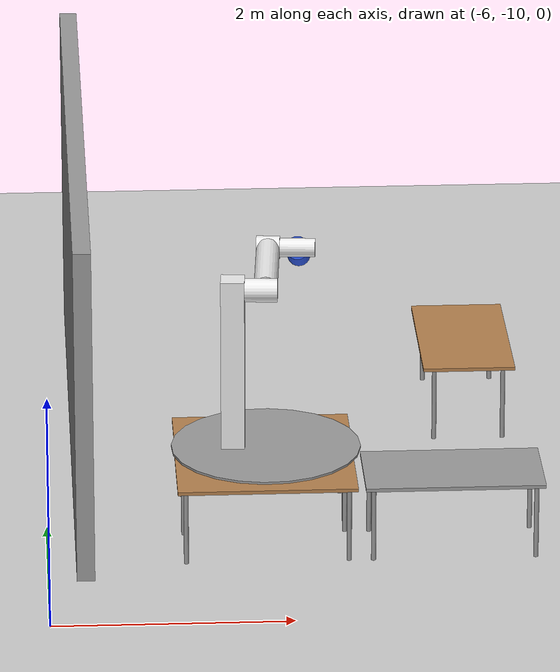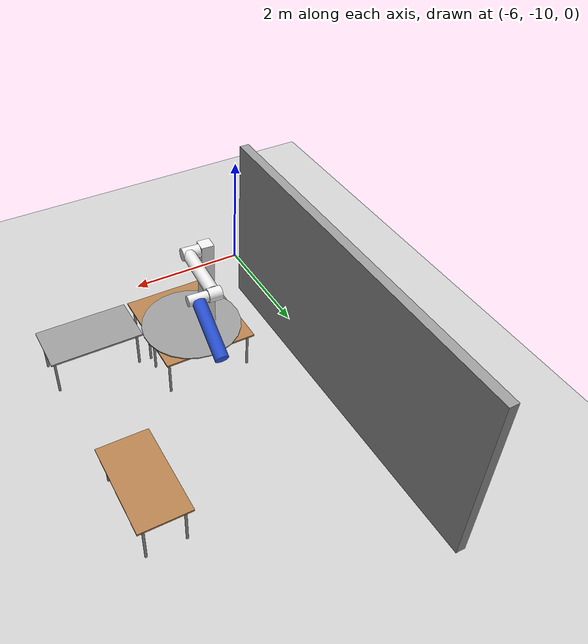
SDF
<sdf version="1.6">
 <world name="default">
  <model name="ground_plane">
   <static>1</static>
   <link name="link">
    <collision name="collision">
     <geometry><plane><normal>0 0 1</normal><size>100 100</size></plane></geometry>
     <surface>
      <contact><collide_bitmask>65535</collide_bitmask></contact>
      <friction><ode><mu>100</mu><mu2>50</mu2></ode></friction>
     </surface>
    </collision>
    <visual name="visual">
     <cast_shadows>0</cast_shadows>
     <geometry><plane><normal>0 0 1</normal><size>100 100</size></plane></geometry>
     <material>
      <script><uri>file://media/materials/scripts/gazebo.material</uri><name>Gazebo/Grey</name></script>
     </material>
    </visual>
   </link>
  </model>
  <model name="nrsl">
   <link name="Wall_5">
    <pose>-5.41 -2.97 0 0 0 -1.5708</pose>
    <visual name="Wall_5_Visual">
     <pose>0 0 1.45 0 -0 0</pose>
     <geometry><box><size>6.09 0.15 2.9</size></box></geometry>
     <material>
      <script><uri>file://media/materials/scripts/gazebo.material</uri><name>Gazebo/Grey</name></script>
      <ambient>1 1 1 1</ambient>
     </material>
     <meta><layer>0</layer></meta>
    </visual>
    <collision name="Wall_5_Collision">
     <pose>0 0 1.45 0 -0 0</pose>
     <geometry><box><size>6.09 0.15 2.9</size></box></geometry>
     <surface>
      <friction>
       <ode><mu>1</mu><mu2>1</mu2><fdir1>0 0 0</fdir1><slip1>0</slip1><slip2>0</slip2></ode>
       <torsional>
        <coefficient>1</coefficient>
        <patch_radius>0</patch_radius>
        <surface_radius>0</surface_radius>
        <use_patch_radius>1</use_patch_radius>
        <ode><slip>0</slip></ode>
       </torsional>
      </friction>
      <bounce><restitution_coefficient>0</restitution_coefficient><threshold>1e+06</threshold></bounce>
      <contact>
       <collide_without_contact>0</collide_without_contact>
       <collide_without_contact_bitmask>1</collide_without_contact_bitmask>
       <collide_bitmask>1</collide_bitmask>
       <ode>
        <soft_cfm>0</soft_cfm>
        <soft_erp>0.2</soft_erp>
        <kp>1e+13</kp>
        <kd>1</kd>
        <max_vel>0.01</max_vel>
        <min_depth>0</min_depth>
       </ode>
       <bullet>
        <split_impulse>1</split_impulse>
        <split_impulse_penetration_threshold>-0.01</split_impulse_penetration_threshold>
        <soft_cfm>0</soft_cfm>
        <soft_erp>0.2</soft_erp>
        <kp>1e+13</kp>
        <kd>1</kd>
       </bullet>
      </contact>
     </surface>
    </collision>
   </link>
   <static>1</static>
   <pose>-0.282297 -3.10716 0 0 -0 0</pose>
  </model>
  <model name="table_0">
   <link name="link">
    <pose>0 0 0 0 -0 1.57</pose>
    <visual name="visual1">
     <pose>0 0 0.67 0 -0 0</pose>
     <geometry><box><size>1.5 0.8 0.03</size></box></geometry>
     <material>
      <script><uri>file://media/materials/scripts/gazebo.material</uri><name>Gazebo/Wood</name></script>
     </material>
    </visual>
    <visual name="front_left_leg">
     <pose>0.68 0.3 0.335 0 -0 0</pose>
     <geometry><cylinder><radius>0.02</radius><length>0.67</length></cylinder></geometry>
     <material>
      <script><uri>file://media/materials/scripts/gazebo.material</uri><name>Gazebo/Grey</name></script>
     </material>
    </visual>
    <visual name="front_right_leg">
     <pose>0.68 -0.3 0.335 0 -0 0</pose>
     <geometry><cylinder><radius>0.02</radius><length>0.67</length></cylinder></geometry>
     <material>
      <script><uri>file://media/materials/scripts/gazebo.material</uri><name>Gazebo/Grey</name></script>
     </material>
    </visual>
    <visual name="back_right_leg">
     <pose>-0.68 -0.3 0.335 0 -0 0</pose>
     <geometry><cylinder><radius>0.02</radius><length>0.67</length></cylinder></geometry>
     <material>
      <script><uri>file://media/materials/scripts/gazebo.material</uri><name>Gazebo/Grey</name></script>
     </material>
    </visual>
    <visual name="back_left_leg">
     <pose>-0.68 0.3 0.335 0 -0 0</pose>
     <geometry><cylinder><radius>0.02</radius><length>0.67</length></cylinder></geometry>
     <material>
      <script><uri>file://media/materials/scripts/gazebo.material</uri><name>Gazebo/Grey</name></script>
     </material>
    </visual>
    <collision name="surface">
     <pose>0 0 0.67 0 -0 0</pose>
     <geometry><box><size>1.5 0.8 0.03</size></box></geometry>
     <surface>
      <friction>
       <ode><mu>0.6</mu><mu2>0.6</mu2><fdir1>0 0 0</fdir1><slip1>0</slip1><slip2>0</slip2></ode>
       <torsional>
        <coefficient>1</coefficient>
        <patch_radius>0</patch_radius>
        <surface_radius>0</surface_radius>
        <use_patch_radius>1</use_patch_radius>
        <ode><slip>0</slip></ode>
       </torsional>
      </friction>
      <bounce><restitution_coefficient>0</restitution_coefficient><threshold>1e+06</threshold></bounce>
      <contact>
       <collide_without_contact>0</collide_without_contact>
       <collide_without_contact_bitmask>1</collide_without_contact_bitmask>
       <collide_bitmask>1</collide_bitmask>
       <ode>
        <soft_cfm>0</soft_cfm>
        <soft_erp>0.2</soft_erp>
        <kp>1e+13</kp>
        <kd>1</kd>
        <max_vel>0.01</max_vel>
        <min_depth>0</min_depth>
       </ode>
       <bullet>
        <split_impulse>1</split_impulse>
        <split_impulse_penetration_threshold>-0.01</split_impulse_penetration_threshold>
        <soft_cfm>0</soft_cfm>
        <soft_erp>0.2</soft_erp>
        <kp>1e+13</kp>
        <kd>1</kd>
       </bullet>
      </contact>
     </surface>
    </collision>
    <collision name="front_left_leg">
     <pose>0.68 0.3 0.335 0 -0 0</pose>
     <geometry><cylinder><radius>0.02</radius><length>0.67</length></cylinder></geometry>
     <surface>
      <friction>
       <ode><mu>1</mu><mu2>1</mu2><fdir1>0 0 0</fdir1><slip1>0</slip1><slip2>0</slip2></ode>
       <torsional>
        <coefficient>1</coefficient>
        <patch_radius>0</patch_radius>
        <surface_radius>0</surface_radius>
        <use_patch_radius>1</use_patch_radius>
        <ode><slip>0</slip></ode>
       </torsional>
      </friction>
      <bounce><restitution_coefficient>0</restitution_coefficient><threshold>1e+06</threshold></bounce>
      <contact>
       <collide_without_contact>0</collide_without_contact>
       <collide_without_contact_bitmask>1</collide_without_contact_bitmask>
       <collide_bitmask>1</collide_bitmask>
       <ode>
        <soft_cfm>0</soft_cfm>
        <soft_erp>0.2</soft_erp>
        <kp>1e+13</kp>
        <kd>1</kd>
        <max_vel>0.01</max_vel>
        <min_depth>0</min_depth>
       </ode>
       <bullet>
        <split_impulse>1</split_impulse>
        <split_impulse_penetration_threshold>-0.01</split_impulse_penetration_threshold>
        <soft_cfm>0</soft_cfm>
        <soft_erp>0.2</soft_erp>
        <kp>1e+13</kp>
        <kd>1</kd>
       </bullet>
      </contact>
     </surface>
    </collision>
    <collision name="front_right_leg">
     <pose>0.68 -0.3 0.335 0 -0 0</pose>
     <geometry><cylinder><radius>0.02</radius><length>0.67</length></cylinder></geometry>
     <surface>
      <friction>
       <ode><mu>1</mu><mu2>1</mu2><fdir1>0 0 0</fdir1><slip1>0</slip1><slip2>0</slip2></ode>
       <torsional>
        <coefficient>1</coefficient>
        <patch_radius>0</patch_radius>
        <surface_radius>0</surface_radius>
        <use_patch_radius>1</use_patch_radius>
        <ode><slip>0</slip></ode>
       </torsional>
      </friction>
      <bounce><restitution_coefficient>0</restitution_coefficient><threshold>1e+06</threshold></bounce>
      <contact>
       <collide_without_contact>0</collide_without_contact>
       <collide_without_contact_bitmask>1</collide_without_contact_bitmask>
       <collide_bitmask>1</collide_bitmask>
       <ode>
        <soft_cfm>0</soft_cfm>
        <soft_erp>0.2</soft_erp>
        <kp>1e+13</kp>
        <kd>1</kd>
        <max_vel>0.01</max_vel>
        <min_depth>0</min_depth>
       </ode>
       <bullet>
        <split_impulse>1</split_impulse>
        <split_impulse_penetration_threshold>-0.01</split_impulse_penetration_threshold>
        <soft_cfm>0</soft_cfm>
        <soft_erp>0.2</soft_erp>
        <kp>1e+13</kp>
        <kd>1</kd>
       </bullet>
      </contact>
     </surface>
    </collision>
    <collision name="back_right_leg">
     <pose>-0.68 -0.3 0.335 0 -0 0</pose>
     <geometry><cylinder><radius>0.02</radius><length>0.67</length></cylinder></geometry>
     <surface>
      <friction>
       <ode><mu>1</mu><mu2>1</mu2><fdir1>0 0 0</fdir1><slip1>0</slip1><slip2>0</slip2></ode>
       <torsional>
        <coefficient>1</coefficient>
        <patch_radius>0</patch_radius>
        <surface_radius>0</surface_radius>
        <use_patch_radius>1</use_patch_radius>
        <ode><slip>0</slip></ode>
       </torsional>
      </friction>
      <bounce><restitution_coefficient>0</restitution_coefficient><threshold>1e+06</threshold></bounce>
      <contact>
       <collide_without_contact>0</collide_without_contact>
       <collide_without_contact_bitmask>1</collide_without_contact_bitmask>
       <collide_bitmask>1</collide_bitmask>
       <ode>
        <soft_cfm>0</soft_cfm>
        <soft_erp>0.2</soft_erp>
        <kp>1e+13</kp>
        <kd>1</kd>
        <max_vel>0.01</max_vel>
        <min_depth>0</min_depth>
       </ode>
       <bullet>
        <split_impulse>1</split_impulse>
        <split_impulse_penetration_threshold>-0.01</split_impulse_penetration_threshold>
        <soft_cfm>0</soft_cfm>
        <soft_erp>0.2</soft_erp>
        <kp>1e+13</kp>
        <kd>1</kd>
       </bullet>
      </contact>
     </surface>
    </collision>
    <collision name="back_left_leg">
     <pose>-0.68 0.3 0.335 0 -0 0</pose>
     <geometry><cylinder><radius>0.02</radius><length>0.67</length></cylinder></geometry>
     <surface>
      <friction>
       <ode><mu>1</mu><mu2>1</mu2><fdir1>0 0 0</fdir1><slip1>0</slip1><slip2>0</slip2></ode>
       <torsional>
        <coefficient>1</coefficient>
        <patch_radius>0</patch_radius>
        <surface_radius>0</surface_radius>
        <use_patch_radius>1</use_patch_radius>
        <ode><slip>0</slip></ode>
       </torsional>
      </friction>
      <bounce><restitution_coefficient>0</restitution_coefficient><threshold>1e+06</threshold></bounce>
      <contact>
       <collide_without_contact>0</collide_without_contact>
       <collide_without_contact_bitmask>1</collide_without_contact_bitmask>
       <collide_bitmask>1</collide_bitmask>
       <ode>
        <soft_cfm>0</soft_cfm>
        <soft_erp>0.2</soft_erp>
        <kp>1e+13</kp>
        <kd>1</kd>
        <max_vel>0.01</max_vel>
        <min_depth>0</min_depth>
       </ode>
       <bullet>
        <split_impulse>1</split_impulse>
        <split_impulse_penetration_threshold>-0.01</split_impulse_penetration_threshold>
        <soft_cfm>0</soft_cfm>
        <soft_erp>0.2</soft_erp>
        <kp>1e+13</kp>
        <kd>1</kd>
       </bullet>
      </contact>
     </surface>
    </collision>
   </link>
   <static>1</static>
   <pose>-2.28394 -5.55738 0 0 -0 0</pose>
  </model>
  <model name="table_6_2">
   <link name="link">
    <visual name="visual1">
     <pose>0 0 0.67 0 -0 0</pose>
     <geometry><box><size>1.5 0.8 0.03</size></box></geometry>
     <material>
      <script><uri>file://media/materials/scripts/gazebo.material</uri><name>Gazebo/Grey</name></script>
     </material>
    </visual>
    <visual name="front_left_leg">
     <pose>0.68 0.3 0.335 0 -0 0</pose>
     <geometry><cylinder><radius>0.02</radius><length>0.67</length></cylinder></geometry>
     <material>
      <script><uri>file://media/materials/scripts/gazebo.material</uri><name>Gazebo/Grey</name></script>
     </material>
    </visual>
    <visual name="front_right_leg">
     <pose>0.68 -0.3 0.335 0 -0 0</pose>
     <geometry><cylinder><radius>0.02</radius><length>0.67</length></cylinder></geometry>
     <material>
      <script><uri>file://media/materials/scripts/gazebo.material</uri><name>Gazebo/Grey</name></script>
     </material>
    </visual>
    <visual name="back_right_leg">
     <pose>-0.68 -0.3 0.335 0 -0 0</pose>
     <geometry><cylinder><radius>0.02</radius><length>0.67</length></cylinder></geometry>
     <material>
      <script><uri>file://media/materials/scripts/gazebo.material</uri><name>Gazebo/Grey</name></script>
     </material>
    </visual>
    <visual name="back_left_leg">
     <pose>-0.68 0.3 0.335 0 -0 0</pose>
     <geometry><cylinder><radius>0.02</radius><length>0.67</length></cylinder></geometry>
     <material>
      <script><uri>file://media/materials/scripts/gazebo.material</uri><name>Gazebo/Grey</name></script>
     </material>
    </visual>
    <collision name="surface">
     <pose>0 0 0.67 0 -0 0</pose>
     <geometry><box><size>1.5 0.8 0.03</size></box></geometry>
     <surface>
      <friction>
       <ode><mu>0.6</mu><mu2>0.6</mu2><fdir1>0 0 0</fdir1><slip1>0</slip1><slip2>0</slip2></ode>
       <torsional>
        <coefficient>1</coefficient>
        <patch_radius>0</patch_radius>
        <surface_radius>0</surface_radius>
        <use_patch_radius>1</use_patch_radius>
        <ode><slip>0</slip></ode>
       </torsional>
      </friction>
      <bounce><restitution_coefficient>0</restitution_coefficient><threshold>1e+06</threshold></bounce>
      <contact>
       <collide_without_contact>0</collide_without_contact>
       <collide_without_contact_bitmask>1</collide_without_contact_bitmask>
       <collide_bitmask>1</collide_bitmask>
       <ode>
        <soft_cfm>0</soft_cfm>
        <soft_erp>0.2</soft_erp>
        <kp>1e+13</kp>
        <kd>1</kd>
        <max_vel>0.01</max_vel>
        <min_depth>0</min_depth>
       </ode>
       <bullet>
        <split_impulse>1</split_impulse>
        <split_impulse_penetration_threshold>-0.01</split_impulse_penetration_threshold>
        <soft_cfm>0</soft_cfm>
        <soft_erp>0.2</soft_erp>
        <kp>1e+13</kp>
        <kd>1</kd>
       </bullet>
      </contact>
     </surface>
    </collision>
    <collision name="front_left_leg">
     <pose>0.68 0.3 0.335 0 -0 0</pose>
     <geometry><cylinder><radius>0.02</radius><length>0.67</length></cylinder></geometry>
     <surface>
      <friction>
       <ode><mu>1</mu><mu2>1</mu2><fdir1>0 0 0</fdir1><slip1>0</slip1><slip2>0</slip2></ode>
       <torsional>
        <coefficient>1</coefficient>
        <patch_radius>0</patch_radius>
        <surface_radius>0</surface_radius>
        <use_patch_radius>1</use_patch_radius>
        <ode><slip>0</slip></ode>
       </torsional>
      </friction>
      <bounce><restitution_coefficient>0</restitution_coefficient><threshold>1e+06</threshold></bounce>
      <contact>
       <collide_without_contact>0</collide_without_contact>
       <collide_without_contact_bitmask>1</collide_without_contact_bitmask>
       <collide_bitmask>1</collide_bitmask>
       <ode>
        <soft_cfm>0</soft_cfm>
        <soft_erp>0.2</soft_erp>
        <kp>1e+13</kp>
        <kd>1</kd>
        <max_vel>0.01</max_vel>
        <min_depth>0</min_depth>
       </ode>
       <bullet>
        <split_impulse>1</split_impulse>
        <split_impulse_penetration_threshold>-0.01</split_impulse_penetration_threshold>
        <soft_cfm>0</soft_cfm>
        <soft_erp>0.2</soft_erp>
        <kp>1e+13</kp>
        <kd>1</kd>
       </bullet>
      </contact>
     </surface>
    </collision>
    <collision name="front_right_leg">
     <pose>0.68 -0.3 0.335 0 -0 0</pose>
     <geometry><cylinder><radius>0.02</radius><length>0.67</length></cylinder></geometry>
     <surface>
      <friction>
       <ode><mu>1</mu><mu2>1</mu2><fdir1>0 0 0</fdir1><slip1>0</slip1><slip2>0</slip2></ode>
       <torsional>
        <coefficient>1</coefficient>
        <patch_radius>0</patch_radius>
        <surface_radius>0</surface_radius>
        <use_patch_radius>1</use_patch_radius>
        <ode><slip>0</slip></ode>
       </torsional>
      </friction>
      <bounce><restitution_coefficient>0</restitution_coefficient><threshold>1e+06</threshold></bounce>
      <contact>
       <collide_without_contact>0</collide_without_contact>
       <collide_without_contact_bitmask>1</collide_without_contact_bitmask>
       <collide_bitmask>1</collide_bitmask>
       <ode>
        <soft_cfm>0</soft_cfm>
        <soft_erp>0.2</soft_erp>
        <kp>1e+13</kp>
        <kd>1</kd>
        <max_vel>0.01</max_vel>
        <min_depth>0</min_depth>
       </ode>
       <bullet>
        <split_impulse>1</split_impulse>
        <split_impulse_penetration_threshold>-0.01</split_impulse_penetration_threshold>
        <soft_cfm>0</soft_cfm>
        <soft_erp>0.2</soft_erp>
        <kp>1e+13</kp>
        <kd>1</kd>
       </bullet>
      </contact>
     </surface>
    </collision>
    <collision name="back_right_leg">
     <pose>-0.68 -0.3 0.335 0 -0 0</pose>
     <geometry><cylinder><radius>0.02</radius><length>0.67</length></cylinder></geometry>
     <surface>
      <friction>
       <ode><mu>1</mu><mu2>1</mu2><fdir1>0 0 0</fdir1><slip1>0</slip1><slip2>0</slip2></ode>
       <torsional>
        <coefficient>1</coefficient>
        <patch_radius>0</patch_radius>
        <surface_radius>0</surface_radius>
        <use_patch_radius>1</use_patch_radius>
        <ode><slip>0</slip></ode>
       </torsional>
      </friction>
      <bounce><restitution_coefficient>0</restitution_coefficient><threshold>1e+06</threshold></bounce>
      <contact>
       <collide_without_contact>0</collide_without_contact>
       <collide_without_contact_bitmask>1</collide_without_contact_bitmask>
       <collide_bitmask>1</collide_bitmask>
       <ode>
        <soft_cfm>0</soft_cfm>
        <soft_erp>0.2</soft_erp>
        <kp>1e+13</kp>
        <kd>1</kd>
        <max_vel>0.01</max_vel>
        <min_depth>0</min_depth>
       </ode>
       <bullet>
        <split_impulse>1</split_impulse>
        <split_impulse_penetration_threshold>-0.01</split_impulse_penetration_threshold>
        <soft_cfm>0</soft_cfm>
        <soft_erp>0.2</soft_erp>
        <kp>1e+13</kp>
        <kd>1</kd>
       </bullet>
      </contact>
     </surface>
    </collision>
    <collision name="back_left_leg">
     <pose>-0.68 0.3 0.335 0 -0 0</pose>
     <geometry><cylinder><radius>0.02</radius><length>0.67</length></cylinder></geometry>
     <surface>
      <friction>
       <ode><mu>1</mu><mu2>1</mu2><fdir1>0 0 0</fdir1><slip1>0</slip1><slip2>0</slip2></ode>
       <torsional>
        <coefficient>1</coefficient>
        <patch_radius>0</patch_radius>
        <surface_radius>0</surface_radius>
        <use_patch_radius>1</use_patch_radius>
        <ode><slip>0</slip></ode>
       </torsional>
      </friction>
      <bounce><restitution_coefficient>0</restitution_coefficient><threshold>1e+06</threshold></bounce>
      <contact>
       <collide_without_contact>0</collide_without_contact>
       <collide_without_contact_bitmask>1</collide_without_contact_bitmask>
       <collide_bitmask>1</collide_bitmask>
       <ode>
        <soft_cfm>0</soft_cfm>
        <soft_erp>0.2</soft_erp>
        <kp>1e+13</kp>
        <kd>1</kd>
        <max_vel>0.01</max_vel>
        <min_depth>0</min_depth>
       </ode>
       <bullet>
        <split_impulse>1</split_impulse>
        <split_impulse_penetration_threshold>-0.01</split_impulse_penetration_threshold>
        <soft_cfm>0</soft_cfm>
        <soft_erp>0.2</soft_erp>
        <kp>1e+13</kp>
        <kd>1</kd>
       </bullet>
      </contact>
     </surface>
    </collision>
   </link>
   <static>1</static>
   <pose>-2.60591 -8.51144 0 0 -0 0</pose>
  </model>
  <model name="table_6_3">
   <link name="link">
    <visual name="visual1">
     <pose>0 0 0.67 0 -0 0</pose>
     <geometry><box><size>1.5 0.8 0.03</size></box></geometry>
     <material>
      <script><uri>file://media/materials/scripts/gazebo.material</uri><name>Gazebo/Wood</name></script>
     </material>
    </visual>
    <visual name="front_left_leg">
     <pose>0.68 0.3 0.335 0 -0 0</pose>
     <geometry><cylinder><radius>0.02</radius><length>0.67</length></cylinder></geometry>
     <material>
      <script><uri>file://media/materials/scripts/gazebo.material</uri><name>Gazebo/Grey</name></script>
     </material>
    </visual>
    <visual name="front_right_leg">
     <pose>0.68 -0.3 0.335 0 -0 0</pose>
     <geometry><cylinder><radius>0.02</radius><length>0.67</length></cylinder></geometry>
     <material>
      <script><uri>file://media/materials/scripts/gazebo.material</uri><name>Gazebo/Grey</name></script>
     </material>
    </visual>
    <visual name="back_right_leg">
     <pose>-0.68 -0.3 0.335 0 -0 0</pose>
     <geometry><cylinder><radius>0.02</radius><length>0.67</length></cylinder></geometry>
     <material>
      <script><uri>file://media/materials/scripts/gazebo.material</uri><name>Gazebo/Grey</name></script>
     </material>
    </visual>
    <visual name="back_left_leg">
     <pose>-0.68 0.3 0.335 0 -0 0</pose>
     <geometry><cylinder><radius>0.02</radius><length>0.67</length></cylinder></geometry>
     <material>
      <script><uri>file://media/materials/scripts/gazebo.material</uri><name>Gazebo/Grey</name></script>
     </material>
    </visual>
    <collision name="surface">
     <pose>0 0 0.67 0 -0 0</pose>
     <geometry><box><size>1.5 0.8 0.03</size></box></geometry>
     <surface>
      <friction>
       <ode><mu>0.6</mu><mu2>0.6</mu2><fdir1>0 0 0</fdir1><slip1>0</slip1><slip2>0</slip2></ode>
       <torsional>
        <coefficient>1</coefficient>
        <patch_radius>0</patch_radius>
        <surface_radius>0</surface_radius>
        <use_patch_radius>1</use_patch_radius>
        <ode><slip>0</slip></ode>
       </torsional>
      </friction>
      <bounce><restitution_coefficient>0</restitution_coefficient><threshold>1e+06</threshold></bounce>
      <contact>
       <collide_without_contact>0</collide_without_contact>
       <collide_without_contact_bitmask>1</collide_without_contact_bitmask>
       <collide_bitmask>1</collide_bitmask>
       <ode>
        <soft_cfm>0</soft_cfm>
        <soft_erp>0.2</soft_erp>
        <kp>1e+13</kp>
        <kd>1</kd>
        <max_vel>0.01</max_vel>
        <min_depth>0</min_depth>
       </ode>
       <bullet>
        <split_impulse>1</split_impulse>
        <split_impulse_penetration_threshold>-0.01</split_impulse_penetration_threshold>
        <soft_cfm>0</soft_cfm>
        <soft_erp>0.2</soft_erp>
        <kp>1e+13</kp>
        <kd>1</kd>
       </bullet>
      </contact>
     </surface>
    </collision>
    <collision name="front_left_leg">
     <pose>0.68 0.3 0.335 0 -0 0</pose>
     <geometry><cylinder><radius>0.02</radius><length>0.67</length></cylinder></geometry>
     <surface>
      <friction>
       <ode><mu>1</mu><mu2>1</mu2><fdir1>0 0 0</fdir1><slip1>0</slip1><slip2>0</slip2></ode>
       <torsional>
        <coefficient>1</coefficient>
        <patch_radius>0</patch_radius>
        <surface_radius>0</surface_radius>
        <use_patch_radius>1</use_patch_radius>
        <ode><slip>0</slip></ode>
       </torsional>
      </friction>
      <bounce><restitution_coefficient>0</restitution_coefficient><threshold>1e+06</threshold></bounce>
      <contact>
       <collide_without_contact>0</collide_without_contact>
       <collide_without_contact_bitmask>1</collide_without_contact_bitmask>
       <collide_bitmask>1</collide_bitmask>
       <ode>
        <soft_cfm>0</soft_cfm>
        <soft_erp>0.2</soft_erp>
        <kp>1e+13</kp>
        <kd>1</kd>
        <max_vel>0.01</max_vel>
        <min_depth>0</min_depth>
       </ode>
       <bullet>
        <split_impulse>1</split_impulse>
        <split_impulse_penetration_threshold>-0.01</split_impulse_penetration_threshold>
        <soft_cfm>0</soft_cfm>
        <soft_erp>0.2</soft_erp>
        <kp>1e+13</kp>
        <kd>1</kd>
       </bullet>
      </contact>
     </surface>
    </collision>
    <collision name="front_right_leg">
     <pose>0.68 -0.3 0.335 0 -0 0</pose>
     <geometry><cylinder><radius>0.02</radius><length>0.67</length></cylinder></geometry>
     <surface>
      <friction>
       <ode><mu>1</mu><mu2>1</mu2><fdir1>0 0 0</fdir1><slip1>0</slip1><slip2>0</slip2></ode>
       <torsional>
        <coefficient>1</coefficient>
        <patch_radius>0</patch_radius>
        <surface_radius>0</surface_radius>
        <use_patch_radius>1</use_patch_radius>
        <ode><slip>0</slip></ode>
       </torsional>
      </friction>
      <bounce><restitution_coefficient>0</restitution_coefficient><threshold>1e+06</threshold></bounce>
      <contact>
       <collide_without_contact>0</collide_without_contact>
       <collide_without_contact_bitmask>1</collide_without_contact_bitmask>
       <collide_bitmask>1</collide_bitmask>
       <ode>
        <soft_cfm>0</soft_cfm>
        <soft_erp>0.2</soft_erp>
        <kp>1e+13</kp>
        <kd>1</kd>
        <max_vel>0.01</max_vel>
        <min_depth>0</min_depth>
       </ode>
       <bullet>
        <split_impulse>1</split_impulse>
        <split_impulse_penetration_threshold>-0.01</split_impulse_penetration_threshold>
        <soft_cfm>0</soft_cfm>
        <soft_erp>0.2</soft_erp>
        <kp>1e+13</kp>
        <kd>1</kd>
       </bullet>
      </contact>
     </surface>
    </collision>
    <collision name="back_right_leg">
     <pose>-0.68 -0.3 0.335 0 -0 0</pose>
     <geometry><cylinder><radius>0.02</radius><length>0.67</length></cylinder></geometry>
     <surface>
      <friction>
       <ode><mu>1</mu><mu2>1</mu2><fdir1>0 0 0</fdir1><slip1>0</slip1><slip2>0</slip2></ode>
       <torsional>
        <coefficient>1</coefficient>
        <patch_radius>0</patch_radius>
        <surface_radius>0</surface_radius>
        <use_patch_radius>1</use_patch_radius>
        <ode><slip>0</slip></ode>
       </torsional>
      </friction>
      <bounce><restitution_coefficient>0</restitution_coefficient><threshold>1e+06</threshold></bounce>
      <contact>
       <collide_without_contact>0</collide_without_contact>
       <collide_without_contact_bitmask>1</collide_without_contact_bitmask>
       <collide_bitmask>1</collide_bitmask>
       <ode>
        <soft_cfm>0</soft_cfm>
        <soft_erp>0.2</soft_erp>
        <kp>1e+13</kp>
        <kd>1</kd>
        <max_vel>0.01</max_vel>
        <min_depth>0</min_depth>
       </ode>
       <bullet>
        <split_impulse>1</split_impulse>
        <split_impulse_penetration_threshold>-0.01</split_impulse_penetration_threshold>
        <soft_cfm>0</soft_cfm>
        <soft_erp>0.2</soft_erp>
        <kp>1e+13</kp>
        <kd>1</kd>
       </bullet>
      </contact>
     </surface>
    </collision>
    <collision name="back_left_leg">
     <pose>-0.68 0.3 0.335 0 -0 0</pose>
     <geometry><cylinder><radius>0.02</radius><length>0.67</length></cylinder></geometry>
     <surface>
      <friction>
       <ode><mu>1</mu><mu2>1</mu2><fdir1>0 0 0</fdir1><slip1>0</slip1><slip2>0</slip2></ode>
       <torsional>
        <coefficient>1</coefficient>
        <patch_radius>0</patch_radius>
        <surface_radius>0</surface_radius>
        <use_patch_radius>1</use_patch_radius>
        <ode><slip>0</slip></ode>
       </torsional>
      </friction>
      <bounce><restitution_coefficient>0</restitution_coefficient><threshold>1e+06</threshold></bounce>
      <contact>
       <collide_without_contact>0</collide_without_contact>
       <collide_without_contact_bitmask>1</collide_without_contact_bitmask>
       <collide_bitmask>1</collide_bitmask>
       <ode>
        <soft_cfm>0</soft_cfm>
        <soft_erp>0.2</soft_erp>
        <kp>1e+13</kp>
        <kd>1</kd>
        <max_vel>0.01</max_vel>
        <min_depth>0</min_depth>
       </ode>
       <bullet>
        <split_impulse>1</split_impulse>
        <split_impulse_penetration_threshold>-0.01</split_impulse_penetration_threshold>
        <soft_cfm>0</soft_cfm>
        <soft_erp>0.2</soft_erp>
        <kp>1e+13</kp>
        <kd>1</kd>
       </bullet>
      </contact>
     </surface>
    </collision>
   </link>
   <static>1</static>
   <pose>-4.16874 -8.50271 0 0 -0 0</pose>
  </model>
  <model name="table_6_4">
   <link name="link">
    <visual name="visual1">
     <pose>0 0 0.67 0 -0 0</pose>
     <geometry><box><size>1.5 0.8 0.03</size></box></geometry>
     <material>
      <script><uri>file://media/materials/scripts/gazebo.material</uri><name>Gazebo/Wood</name></script>
     </material>
    </visual>
    <visual name="front_left_leg">
     <pose>0.68 0.3 0.335 0 -0 0</pose>
     <geometry><cylinder><radius>0.02</radius><length>0.67</length></cylinder></geometry>
     <material>
      <script><uri>file://media/materials/scripts/gazebo.material</uri><name>Gazebo/Grey</name></script>
     </material>
    </visual>
    <visual name="front_right_leg">
     <pose>0.68 -0.3 0.335 0 -0 0</pose>
     <geometry><cylinder><radius>0.02</radius><length>0.67</length></cylinder></geometry>
     <material>
      <script><uri>file://media/materials/scripts/gazebo.material</uri><name>Gazebo/Grey</name></script>
     </material>
    </visual>
    <visual name="back_right_leg">
     <pose>-0.68 -0.3 0.335 0 -0 0</pose>
     <geometry><cylinder><radius>0.02</radius><length>0.67</length></cylinder></geometry>
     <material>
      <script><uri>file://media/materials/scripts/gazebo.material</uri><name>Gazebo/Grey</name></script>
     </material>
    </visual>
    <visual name="back_left_leg">
     <pose>-0.68 0.3 0.335 0 -0 0</pose>
     <geometry><cylinder><radius>0.02</radius><length>0.67</length></cylinder></geometry>
     <material>
      <script><uri>file://media/materials/scripts/gazebo.material</uri><name>Gazebo/Grey</name></script>
     </material>
    </visual>
    <collision name="surface">
     <pose>0 0 0.67 0 -0 0</pose>
     <geometry><box><size>1.5 0.8 0.03</size></box></geometry>
     <surface>
      <friction>
       <ode><mu>0.6</mu><mu2>0.6</mu2><fdir1>0 0 0</fdir1><slip1>0</slip1><slip2>0</slip2></ode>
       <torsional>
        <coefficient>1</coefficient>
        <patch_radius>0</patch_radius>
        <surface_radius>0</surface_radius>
        <use_patch_radius>1</use_patch_radius>
        <ode><slip>0</slip></ode>
       </torsional>
      </friction>
      <bounce><restitution_coefficient>0</restitution_coefficient><threshold>1e+06</threshold></bounce>
      <contact>
       <collide_without_contact>0</collide_without_contact>
       <collide_without_contact_bitmask>1</collide_without_contact_bitmask>
       <collide_bitmask>1</collide_bitmask>
       <ode>
        <soft_cfm>0</soft_cfm>
        <soft_erp>0.2</soft_erp>
        <kp>1e+13</kp>
        <kd>1</kd>
        <max_vel>0.01</max_vel>
        <min_depth>0</min_depth>
       </ode>
       <bullet>
        <split_impulse>1</split_impulse>
        <split_impulse_penetration_threshold>-0.01</split_impulse_penetration_threshold>
        <soft_cfm>0</soft_cfm>
        <soft_erp>0.2</soft_erp>
        <kp>1e+13</kp>
        <kd>1</kd>
       </bullet>
      </contact>
     </surface>
    </collision>
    <collision name="front_left_leg">
     <pose>0.68 0.3 0.335 0 -0 0</pose>
     <geometry><cylinder><radius>0.02</radius><length>0.67</length></cylinder></geometry>
     <surface>
      <friction>
       <ode><mu>1</mu><mu2>1</mu2><fdir1>0 0 0</fdir1><slip1>0</slip1><slip2>0</slip2></ode>
       <torsional>
        <coefficient>1</coefficient>
        <patch_radius>0</patch_radius>
        <surface_radius>0</surface_radius>
        <use_patch_radius>1</use_patch_radius>
        <ode><slip>0</slip></ode>
       </torsional>
      </friction>
      <bounce><restitution_coefficient>0</restitution_coefficient><threshold>1e+06</threshold></bounce>
      <contact>
       <collide_without_contact>0</collide_without_contact>
       <collide_without_contact_bitmask>1</collide_without_contact_bitmask>
       <collide_bitmask>1</collide_bitmask>
       <ode>
        <soft_cfm>0</soft_cfm>
        <soft_erp>0.2</soft_erp>
        <kp>1e+13</kp>
        <kd>1</kd>
        <max_vel>0.01</max_vel>
        <min_depth>0</min_depth>
       </ode>
       <bullet>
        <split_impulse>1</split_impulse>
        <split_impulse_penetration_threshold>-0.01</split_impulse_penetration_threshold>
        <soft_cfm>0</soft_cfm>
        <soft_erp>0.2</soft_erp>
        <kp>1e+13</kp>
        <kd>1</kd>
       </bullet>
      </contact>
     </surface>
    </collision>
    <collision name="front_right_leg">
     <pose>0.68 -0.3 0.335 0 -0 0</pose>
     <geometry><cylinder><radius>0.02</radius><length>0.67</length></cylinder></geometry>
     <surface>
      <friction>
       <ode><mu>1</mu><mu2>1</mu2><fdir1>0 0 0</fdir1><slip1>0</slip1><slip2>0</slip2></ode>
       <torsional>
        <coefficient>1</coefficient>
        <patch_radius>0</patch_radius>
        <surface_radius>0</surface_radius>
        <use_patch_radius>1</use_patch_radius>
        <ode><slip>0</slip></ode>
       </torsional>
      </friction>
      <bounce><restitution_coefficient>0</restitution_coefficient><threshold>1e+06</threshold></bounce>
      <contact>
       <collide_without_contact>0</collide_without_contact>
       <collide_without_contact_bitmask>1</collide_without_contact_bitmask>
       <collide_bitmask>1</collide_bitmask>
       <ode>
        <soft_cfm>0</soft_cfm>
        <soft_erp>0.2</soft_erp>
        <kp>1e+13</kp>
        <kd>1</kd>
        <max_vel>0.01</max_vel>
        <min_depth>0</min_depth>
       </ode>
       <bullet>
        <split_impulse>1</split_impulse>
        <split_impulse_penetration_threshold>-0.01</split_impulse_penetration_threshold>
        <soft_cfm>0</soft_cfm>
        <soft_erp>0.2</soft_erp>
        <kp>1e+13</kp>
        <kd>1</kd>
       </bullet>
      </contact>
     </surface>
    </collision>
    <collision name="back_right_leg">
     <pose>-0.68 -0.3 0.335 0 -0 0</pose>
     <geometry><cylinder><radius>0.02</radius><length>0.67</length></cylinder></geometry>
     <surface>
      <friction>
       <ode><mu>1</mu><mu2>1</mu2><fdir1>0 0 0</fdir1><slip1>0</slip1><slip2>0</slip2></ode>
       <torsional>
        <coefficient>1</coefficient>
        <patch_radius>0</patch_radius>
        <surface_radius>0</surface_radius>
        <use_patch_radius>1</use_patch_radius>
        <ode><slip>0</slip></ode>
       </torsional>
      </friction>
      <bounce><restitution_coefficient>0</restitution_coefficient><threshold>1e+06</threshold></bounce>
      <contact>
       <collide_without_contact>0</collide_without_contact>
       <collide_without_contact_bitmask>1</collide_without_contact_bitmask>
       <collide_bitmask>1</collide_bitmask>
       <ode>
        <soft_cfm>0</soft_cfm>
        <soft_erp>0.2</soft_erp>
        <kp>1e+13</kp>
        <kd>1</kd>
        <max_vel>0.01</max_vel>
        <min_depth>0</min_depth>
       </ode>
       <bullet>
        <split_impulse>1</split_impulse>
        <split_impulse_penetration_threshold>-0.01</split_impulse_penetration_threshold>
        <soft_cfm>0</soft_cfm>
        <soft_erp>0.2</soft_erp>
        <kp>1e+13</kp>
        <kd>1</kd>
       </bullet>
      </contact>
     </surface>
    </collision>
    <collision name="back_left_leg">
     <pose>-0.68 0.3 0.335 0 -0 0</pose>
     <geometry><cylinder><radius>0.02</radius><length>0.67</length></cylinder></geometry>
     <surface>
      <friction>
       <ode><mu>1</mu><mu2>1</mu2><fdir1>0 0 0</fdir1><slip1>0</slip1><slip2>0</slip2></ode>
       <torsional>
        <coefficient>1</coefficient>
        <patch_radius>0</patch_radius>
        <surface_radius>0</surface_radius>
        <use_patch_radius>1</use_patch_radius>
        <ode><slip>0</slip></ode>
       </torsional>
      </friction>
      <bounce><restitution_coefficient>0</restitution_coefficient><threshold>1e+06</threshold></bounce>
      <contact>
       <collide_without_contact>0</collide_without_contact>
       <collide_without_contact_bitmask>1</collide_without_contact_bitmask>
       <collide_bitmask>1</collide_bitmask>
       <ode>
        <soft_cfm>0</soft_cfm>
        <soft_erp>0.2</soft_erp>
        <kp>1e+13</kp>
        <kd>1</kd>
        <max_vel>0.01</max_vel>
        <min_depth>0</min_depth>
       </ode>
       <bullet>
        <split_impulse>1</split_impulse>
        <split_impulse_penetration_threshold>-0.01</split_impulse_penetration_threshold>
        <soft_cfm>0</soft_cfm>
        <soft_erp>0.2</soft_erp>
        <kp>1e+13</kp>
        <kd>1</kd>
       </bullet>
      </contact>
     </surface>
    </collision>
   </link>
   <static>1</static>
   <pose>-4.16217 -7.6855 0 0 -0 0</pose>
  </model>
  <model name="double_pendulum_with_base">
   <link name="base">
    <inertial>
     <mass>100</mass>
     <inertia><ixx>1</ixx><ixy>0</ixy><ixz>0</ixz><iyy>1</iyy><iyz>0</iyz><izz>1</izz></inertia>
    </inertial>
    <pose>0 0 0.68 0 -0 0</pose>
    <visual name="vis_plate_on_ground">
     <pose>0 0 0.01 0 -0 0</pose>
     <geometry><cylinder><radius>0.8</radius><length>0.02</length></cylinder></geometry>
     <material>
      <script><uri>file://media/materials/scripts/gazebo.material</uri><name>Gazebo/Grey</name></script>
     </material>
    </visual>
    <visual name="vis_pole">
     <pose>-0.275 0 0.76 0 -0 0</pose>
     <geometry><box><size>0.2 0.2 1.52</size></box></geometry>
     <material>
      <script><uri>file://media/materials/scripts/gazebo.material</uri><name>Gazebo/White</name></script>
     </material>
    </visual>
    <collision name="col_plate_on_ground">
     <pose>0 0 0.01 0 -0 0</pose>
     <geometry><cylinder><radius>0.8</radius><length>0.02</length></cylinder></geometry>
     <surface>
      <friction>
       <ode><mu>1</mu><mu2>1</mu2><fdir1>0 0 0</fdir1><slip1>0</slip1><slip2>0</slip2></ode>
       <torsional>
        <coefficient>1</coefficient>
        <patch_radius>0</patch_radius>
        <surface_radius>0</surface_radius>
        <use_patch_radius>1</use_patch_radius>
        <ode><slip>0</slip></ode>
       </torsional>
      </friction>
      <bounce><restitution_coefficient>0</restitution_coefficient><threshold>1e+06</threshold></bounce>
      <contact>
       <collide_without_contact>0</collide_without_contact>
       <collide_without_contact_bitmask>1</collide_without_contact_bitmask>
       <collide_bitmask>1</collide_bitmask>
       <ode>
        <soft_cfm>0</soft_cfm>
        <soft_erp>0.2</soft_erp>
        <kp>1e+13</kp>
        <kd>1</kd>
        <max_vel>0.01</max_vel>
        <min_depth>0</min_depth>
       </ode>
       <bullet>
        <split_impulse>1</split_impulse>
        <split_impulse_penetration_threshold>-0.01</split_impulse_penetration_threshold>
        <soft_cfm>0</soft_cfm>
        <soft_erp>0.2</soft_erp>
        <kp>1e+13</kp>
        <kd>1</kd>
       </bullet>
      </contact>
     </surface>
    </collision>
    <collision name="col_pole">
     <pose>-0.275 0 0.76 0 -0 0</pose>
     <geometry><box><size>0.2 0.2 1.52</size></box></geometry>
     <surface>
      <friction>
       <ode><mu>1</mu><mu2>1</mu2><fdir1>0 0 0</fdir1><slip1>0</slip1><slip2>0</slip2></ode>
       <torsional>
        <coefficient>1</coefficient>
        <patch_radius>0</patch_radius>
        <surface_radius>0</surface_radius>
        <use_patch_radius>1</use_patch_radius>
        <ode><slip>0</slip></ode>
       </torsional>
      </friction>
      <bounce><restitution_coefficient>0</restitution_coefficient><threshold>1e+06</threshold></bounce>
      <contact>
       <collide_without_contact>0</collide_without_contact>
       <collide_without_contact_bitmask>1</collide_without_contact_bitmask>
       <collide_bitmask>1</collide_bitmask>
       <ode>
        <soft_cfm>0</soft_cfm>
        <soft_erp>0.2</soft_erp>
        <kp>1e+13</kp>
        <kd>1</kd>
        <max_vel>0.01</max_vel>
        <min_depth>0</min_depth>
       </ode>
       <bullet>
        <split_impulse>1</split_impulse>
        <split_impulse_penetration_threshold>-0.01</split_impulse_penetration_threshold>
        <soft_cfm>0</soft_cfm>
        <soft_erp>0.2</soft_erp>
        <kp>1e+13</kp>
        <kd>1</kd>
       </bullet>
      </contact>
     </surface>
    </collision>
   </link>
   <link name="lower_link">
    <pose>0.25 1 2.1 -2 -0 0</pose>
    <inertial>
     <pose>0 0 0.5 0 -0 0</pose>
     <inertia><ixx>1</ixx><ixy>0</ixy><ixz>0</ixz><iyy>1</iyy><iyz>0</iyz><izz>1</izz></inertia>
     <mass>1</mass>
    </inertial>
    <visual name="vis_cylinder">
     <pose>0 0 0.5 0 -0 0</pose>
     <geometry><cylinder><radius>0.1</radius><length>0.9</length></cylinder></geometry>
     <material>
      <script><uri>file://media/materials/scripts/gazebo.material</uri><name>Gazebo/Blue</name></script>
     </material>
    </visual>
    <visual name="vis_lower_joint">
     <pose>0 0 0 3.14159 1.57079 3.14159</pose>
     <geometry><cylinder><radius>0.08</radius><length>0.3</length></cylinder></geometry>
     <material>
      <script><uri>file://media/materials/scripts/gazebo.material</uri><name>Gazebo/White</name></script>
     </material>
    </visual>
    <collision name="col_lower_joint">
     <pose>0 0 0 3.14159 1.57079 3.14159</pose>
     <geometry><cylinder><radius>0.08</radius><length>0.3</length></cylinder></geometry>
     <surface>
      <friction>
       <ode><mu>1</mu><mu2>1</mu2><fdir1>0 0 0</fdir1><slip1>0</slip1><slip2>0</slip2></ode>
       <torsional>
        <coefficient>1</coefficient>
        <patch_radius>0</patch_radius>
        <surface_radius>0</surface_radius>
        <use_patch_radius>1</use_patch_radius>
        <ode><slip>0</slip></ode>
       </torsional>
      </friction>
      <bounce><restitution_coefficient>0</restitution_coefficient><threshold>1e+06</threshold></bounce>
      <contact>
       <collide_without_contact>0</collide_without_contact>
       <collide_without_contact_bitmask>1</collide_without_contact_bitmask>
       <collide_bitmask>1</collide_bitmask>
       <ode>
        <soft_cfm>0</soft_cfm>
        <soft_erp>0.2</soft_erp>
        <kp>1e+13</kp>
        <kd>1</kd>
        <max_vel>0.01</max_vel>
        <min_depth>0</min_depth>
       </ode>
       <bullet>
        <split_impulse>1</split_impulse>
        <split_impulse_penetration_threshold>-0.01</split_impulse_penetration_threshold>
        <soft_cfm>0</soft_cfm>
        <soft_erp>0.2</soft_erp>
        <kp>1e+13</kp>
        <kd>1</kd>
       </bullet>
      </contact>
     </surface>
    </collision>
    <collision name="col_cylinder">
     <pose>0 0 0.5 0 -0 0</pose>
     <geometry><cylinder><radius>0.1</radius><length>0.9</length></cylinder></geometry>
     <surface>
      <friction>
       <ode><mu>1</mu><mu2>1</mu2><fdir1>0 0 0</fdir1><slip1>0</slip1><slip2>0</slip2></ode>
       <torsional>
        <coefficient>1</coefficient>
        <patch_radius>0</patch_radius>
        <surface_radius>0</surface_radius>
        <use_patch_radius>1</use_patch_radius>
        <ode><slip>0</slip></ode>
       </torsional>
      </friction>
      <bounce><restitution_coefficient>0</restitution_coefficient><threshold>1e+06</threshold></bounce>
      <contact>
       <collide_without_contact>0</collide_without_contact>
       <collide_without_contact_bitmask>1</collide_without_contact_bitmask>
       <collide_bitmask>1</collide_bitmask>
       <ode>
        <soft_cfm>0</soft_cfm>
        <soft_erp>0.2</soft_erp>
        <kp>1e+13</kp>
        <kd>1</kd>
        <max_vel>0.01</max_vel>
        <min_depth>0</min_depth>
       </ode>
       <bullet>
        <split_impulse>1</split_impulse>
        <split_impulse_penetration_threshold>-0.01</split_impulse_penetration_threshold>
        <soft_cfm>0</soft_cfm>
        <soft_erp>0.2</soft_erp>
        <kp>1e+13</kp>
        <kd>1</kd>
       </bullet>
      </contact>
     </surface>
    </collision>
   </link>
   <link name="upper_link">
    <pose>-0 0 2.1 -1.5708 0 0</pose>
    <inertial>
     <pose>0 0 0.5 0 -0 0</pose>
     <inertia><ixx>1</ixx><ixy>0</ixy><ixz>0</ixz><iyy>1</iyy><iyz>0</iyz><izz>1</izz></inertia>
     <mass>1</mass>
    </inertial>
    <visual name="vis_upper_joint">
     <pose>-0.05 0 0 3.14159 1.57079 3.14159</pose>
     <geometry><cylinder><radius>0.1</radius><length>0.3</length></cylinder></geometry>
     <material>
      <script><uri>file://media/materials/scripts/gazebo.material</uri><name>Gazebo/White</name></script>
     </material>
    </visual>
    <visual name="vis_lower_joint">
     <pose>0 0 1 3.14159 1.57079 3.14159</pose>
     <geometry><cylinder><radius>0.1</radius><length>0.2</length></cylinder></geometry>
     <material>
      <script><uri>file://media/materials/scripts/gazebo.material</uri><name>Gazebo/White</name></script>
     </material>
    </visual>
    <visual name="vis_cylinder">
     <pose>0 0 0.5 0 -0 0</pose>
     <geometry><cylinder><radius>0.1</radius><length>0.9</length></cylinder></geometry>
     <material>
      <script><uri>file://media/materials/scripts/gazebo.material</uri><name>Gazebo/White</name></script>
     </material>
    </visual>
    <collision name="col_upper_joint">
     <pose>-0.05 0 0 3.14159 1.57079 3.14159</pose>
     <geometry><cylinder><radius>0.1</radius><length>0.3</length></cylinder></geometry>
     <surface>
      <friction>
       <ode><mu>1</mu><mu2>1</mu2><fdir1>0 0 0</fdir1><slip1>0</slip1><slip2>0</slip2></ode>
       <torsional>
        <coefficient>1</coefficient>
        <patch_radius>0</patch_radius>
        <surface_radius>0</surface_radius>
        <use_patch_radius>1</use_patch_radius>
        <ode><slip>0</slip></ode>
       </torsional>
      </friction>
      <bounce><restitution_coefficient>0</restitution_coefficient><threshold>1e+06</threshold></bounce>
      <contact>
       <collide_without_contact>0</collide_without_contact>
       <collide_without_contact_bitmask>1</collide_without_contact_bitmask>
       <collide_bitmask>1</collide_bitmask>
       <ode>
        <soft_cfm>0</soft_cfm>
        <soft_erp>0.2</soft_erp>
        <kp>1e+13</kp>
        <kd>1</kd>
        <max_vel>0.01</max_vel>
        <min_depth>0</min_depth>
       </ode>
       <bullet>
        <split_impulse>1</split_impulse>
        <split_impulse_penetration_threshold>-0.01</split_impulse_penetration_threshold>
        <soft_cfm>0</soft_cfm>
        <soft_erp>0.2</soft_erp>
        <kp>1e+13</kp>
        <kd>1</kd>
       </bullet>
      </contact>
     </surface>
    </collision>
    <collision name="col_lower_joint">
     <pose>0 0 1 3.14159 1.57079 3.14159</pose>
     <geometry><cylinder><radius>0.1</radius><length>0.2</length></cylinder></geometry>
     <surface>
      <friction>
       <ode><mu>1</mu><mu2>1</mu2><fdir1>0 0 0</fdir1><slip1>0</slip1><slip2>0</slip2></ode>
       <torsional>
        <coefficient>1</coefficient>
        <patch_radius>0</patch_radius>
        <surface_radius>0</surface_radius>
        <use_patch_radius>1</use_patch_radius>
        <ode><slip>0</slip></ode>
       </torsional>
      </friction>
      <bounce><restitution_coefficient>0</restitution_coefficient><threshold>1e+06</threshold></bounce>
      <contact>
       <collide_without_contact>0</collide_without_contact>
       <collide_without_contact_bitmask>1</collide_without_contact_bitmask>
       <collide_bitmask>1</collide_bitmask>
       <ode>
        <soft_cfm>0</soft_cfm>
        <soft_erp>0.2</soft_erp>
        <kp>1e+13</kp>
        <kd>1</kd>
        <max_vel>0.01</max_vel>
        <min_depth>0</min_depth>
       </ode>
       <bullet>
        <split_impulse>1</split_impulse>
        <split_impulse_penetration_threshold>-0.01</split_impulse_penetration_threshold>
        <soft_cfm>0</soft_cfm>
        <soft_erp>0.2</soft_erp>
        <kp>1e+13</kp>
        <kd>1</kd>
       </bullet>
      </contact>
     </surface>
    </collision>
    <collision name="col_cylinder">
     <pose>0 0 0.5 0 -0 0</pose>
     <geometry><cylinder><radius>0.1</radius><length>0.9</length></cylinder></geometry>
     <surface>
      <friction>
       <ode><mu>1</mu><mu2>1</mu2><fdir1>0 0 0</fdir1><slip1>0</slip1><slip2>0</slip2></ode>
       <torsional>
        <coefficient>1</coefficient>
        <patch_radius>0</patch_radius>
        <surface_radius>0</surface_radius>
        <use_patch_radius>1</use_patch_radius>
        <ode><slip>0</slip></ode>
       </torsional>
      </friction>
      <bounce><restitution_coefficient>0</restitution_coefficient><threshold>1e+06</threshold></bounce>
      <contact>
       <collide_without_contact>0</collide_without_contact>
       <collide_without_contact_bitmask>1</collide_without_contact_bitmask>
       <collide_bitmask>1</collide_bitmask>
       <ode>
        <soft_cfm>0</soft_cfm>
        <soft_erp>0.2</soft_erp>
        <kp>1e+13</kp>
        <kd>1</kd>
        <max_vel>0.01</max_vel>
        <min_depth>0</min_depth>
       </ode>
       <bullet>
        <split_impulse>1</split_impulse>
        <split_impulse_penetration_threshold>-0.01</split_impulse_penetration_threshold>
        <soft_cfm>0</soft_cfm>
        <soft_erp>0.2</soft_erp>
        <kp>1e+13</kp>
        <kd>1</kd>
       </bullet>
      </contact>
     </surface>
    </collision>
   </link>
   <joint name="lower_joint" type="revolute">
    <parent>upper_link</parent>
    <child>lower_link</child>
    <axis>
     <xyz>1 0 0</xyz>
     <use_parent_model_frame>0</use_parent_model_frame>
     <limit><lower>-1e+16</lower><upper>1e+16</upper><effort>-1</effort><velocity>-1</velocity></limit>
     <dynamics>
      <spring_reference>0</spring_reference>
      <spring_stiffness>0</spring_stiffness>
      <damping>0</damping>
      <friction>0</friction>
     </dynamics>
    </axis>
    <physics>
     <ode><limit><cfm>0</cfm><erp>0.2</erp></limit><suspension><cfm>0</cfm><erp>0.2</erp></suspension></ode>
    </physics>
   </joint>
   <joint name="upper_joint" type="revolute">
    <parent>base</parent>
    <child>upper_link</child>
    <axis>
     <xyz>1 0 0</xyz>
     <use_parent_model_frame>0</use_parent_model_frame>
     <limit><lower>-1e+16</lower><upper>1e+16</upper><effort>-1</effort><velocity>-1</velocity></limit>
     <dynamics>
      <spring_reference>0</spring_reference>
      <spring_stiffness>0</spring_stiffness>
      <damping>0</damping>
      <friction>0</friction>
     </dynamics>
    </axis>
    <physics>
     <ode><limit><cfm>0</cfm><erp>0.2</erp></limit><suspension><cfm>0</cfm><erp>0.2</erp></suspension></ode>
    </physics>
   </joint>
   <static>0</static>
   <pose>-4.14397 -7.97372 0.005012 -4.8e-05 5e-06 -0.070418</pose>
  </model>
 </world>
</sdf>
